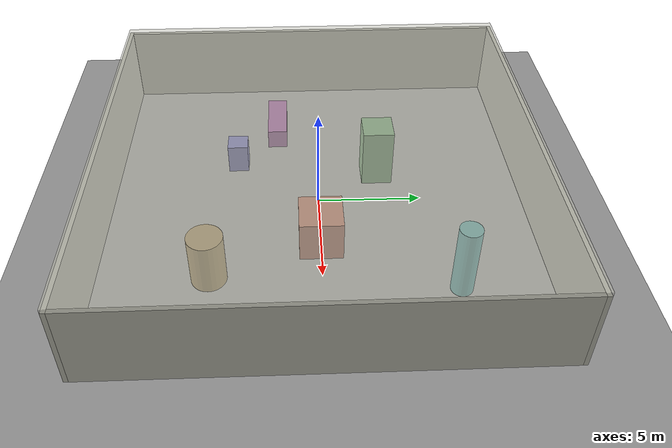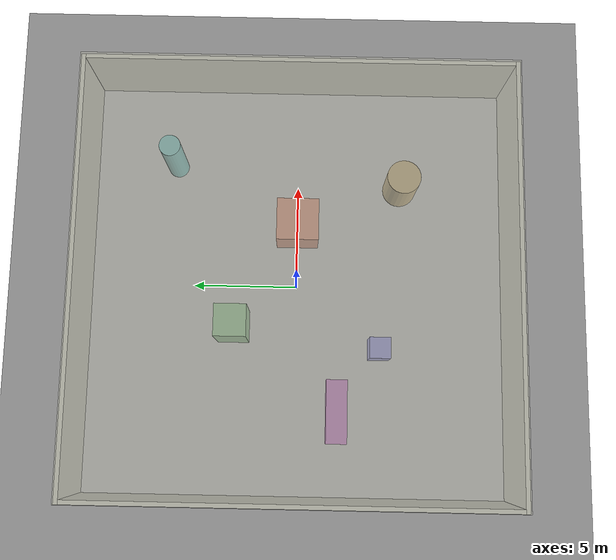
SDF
<?xml version="1.0"?>
<sdf version="1.9">
  <world name="warehouse">

    <!-- Physics -->
    <physics name="1ms" type="ode">
      <max_step_size>0.004</max_step_size>
      <real_time_factor>1.0</real_time_factor>
      <real_time_update_rate>250</real_time_update_rate>
    </physics>

    <!-- PX4 Required: Gravity and magnetic field for IMU/mag sensors -->
    <gravity>0 0 -9.8</gravity>
    <magnetic_field>6e-06 2.3e-05 -4.2e-05</magnetic_field>
    <atmosphere type="adiabatic"/>

    <!-- Scene configuration -->
    <scene>
      <ambient>0.4 0.4 0.4 1</ambient>
      <grid>false</grid>
      <shadows>true</shadows>
    </scene>

    <!-- Required plugins -->
    <plugin filename="gz-sim-physics-system" name="gz::sim::systems::Physics" />
    <plugin filename="gz-sim-scene-broadcaster-system" name="gz::sim::systems::SceneBroadcaster" />
    <plugin filename="gz-sim-sensors-system" name="gz::sim::systems::Sensors">
      <render_engine>ogre2</render_engine>
    </plugin>
    <plugin filename="gz-sim-user-commands-system" name="gz::sim::systems::UserCommands" />

    <!-- Lighting -->
    <light type="directional" name="sun">
      <cast_shadows>true</cast_shadows>
      <pose>0 0 10 0 0 0</pose>
      <diffuse>0.8 0.8 0.8 1</diffuse>
      <specular>0.2 0.2 0.2 1</specular>
      <direction>-0.5 0.1 -0.9</direction>
    </light>

    <!-- Ground plane -->
    <model name="ground_plane">
      <static>true</static>
      <link name="link">
        <collision name="collision">
          <geometry>
            <plane>
              <normal>0 0 1</normal>
              <size>20 20</size>
            </plane>
          </geometry>
        </collision>
        <visual name="visual">
          <geometry>
            <plane>
              <normal>0 0 1</normal>
              <size>20 20</size>
            </plane>
          </geometry>
          <material>
            <ambient>0.5 0.5 0.5 1</ambient>
            <diffuse>0.6 0.6 0.6 1</diffuse>
          </material>
        </visual>
      </link>
    </model>

    <!-- Walls (20x20m room, 4m high, 0.2m thick) -->
    <!-- North wall -->
    <model name="wall_north">
      <static>true</static>
      <pose>0 10.1 2 0 0 0</pose>
      <link name="link">
        <collision name="collision">
          <geometry>
            <box>
              <size>20.4 0.2 4</size>
            </box>
          </geometry>
        </collision>
        <visual name="visual">
          <geometry>
            <box>
              <size>20.4 0.2 4</size>
            </box>
          </geometry>
          <material>
            <ambient>0.7 0.7 0.65 1</ambient>
          </material>
        </visual>
      </link>
    </model>

    <!-- South wall -->
    <model name="wall_south">
      <static>true</static>
      <pose>0 -10.1 2 0 0 0</pose>
      <link name="link">
        <collision name="collision">
          <geometry>
            <box>
              <size>20.4 0.2 4</size>
            </box>
          </geometry>
        </collision>
        <visual name="visual">
          <geometry>
            <box>
              <size>20.4 0.2 4</size>
            </box>
          </geometry>
          <material>
            <ambient>0.7 0.7 0.65 1</ambient>
          </material>
        </visual>
      </link>
    </model>

    <!-- East wall -->
    <model name="wall_east">
      <static>true</static>
      <pose>10.1 0 2 0 0 0</pose>
      <link name="link">
        <collision name="collision">
          <geometry>
            <box>
              <size>0.2 20 4</size>
            </box>
          </geometry>
        </collision>
        <visual name="visual">
          <geometry>
            <box>
              <size>0.2 20 4</size>
            </box>
          </geometry>
          <material>
            <ambient>0.7 0.7 0.65 1</ambient>
          </material>
        </visual>
      </link>
    </model>

    <!-- West wall -->
    <model name="wall_west">
      <static>true</static>
      <pose>-10.1 0 2 0 0 0</pose>
      <link name="link">
        <collision name="collision">
          <geometry>
            <box>
              <size>0.2 20 4</size>
            </box>
          </geometry>
        </collision>
        <visual name="visual">
          <geometry>
            <box>
              <size>0.2 20 4</size>
            </box>
          </geometry>
          <material>
            <ambient>0.7 0.7 0.65 1</ambient>
          </material>
        </visual>
      </link>
    </model>

    <!-- Ceiling -->
    <model name="ceiling">
      <static>true</static>
      <pose>0 0 4.1 0 0 0</pose>
      <link name="link">
        <collision name="collision">
          <geometry>
            <box>
              <size>20.4 20.4 0.2</size>
            </box>
          </geometry>
        </collision>
        <visual name="visual">
          <geometry>
            <box>
              <size>20.4 20.4 0.2</size>
            </box>
          </geometry>
          <material>
            <ambient>0.8 0.8 0.75 1</ambient>
          </material>
          <transparency>0.5</transparency>
        </visual>
      </link>
    </model>

    <!-- Obstacle 1: Large box (2x2x2m) at (3, 0) — matches mock_scene_node -->
    <model name="obstacle_box_1">
      <static>true</static>
      <pose>3 0 1 0 0 0</pose>
      <link name="link">
        <collision name="collision">
          <geometry>
            <box>
              <size>2 2 2</size>
            </box>
          </geometry>
        </collision>
        <visual name="visual">
          <geometry>
            <box>
              <size>2 2 2</size>
            </box>
          </geometry>
          <material>
            <ambient>0.6 0.3 0.2 1</ambient>
            <diffuse>0.7 0.4 0.3 1</diffuse>
          </material>
        </visual>
      </link>
    </model>

    <!-- Obstacle 2: Tall box (1.5x1.5x3m) at (-2, 3) — matches mock_scene_node -->
    <model name="obstacle_box_2">
      <static>true</static>
      <pose>-2 3 1.5 0 0 0</pose>
      <link name="link">
        <collision name="collision">
          <geometry>
            <box>
              <size>1.5 1.5 3</size>
            </box>
          </geometry>
        </collision>
        <visual name="visual">
          <geometry>
            <box>
              <size>1.5 1.5 3</size>
            </box>
          </geometry>
          <material>
            <ambient>0.3 0.5 0.3 1</ambient>
            <diffuse>0.4 0.6 0.4 1</diffuse>
          </material>
        </visual>
      </link>
    </model>

    <!-- Obstacle 3: Small box (1x1x1.5m) at (-3, -4) — matches mock_scene_node -->
    <model name="obstacle_box_3">
      <static>true</static>
      <pose>-3 -4 0.75 0 0 0</pose>
      <link name="link">
        <collision name="collision">
          <geometry>
            <box>
              <size>1 1 1.5</size>
            </box>
          </geometry>
        </collision>
        <visual name="visual">
          <geometry>
            <box>
              <size>1 1 1.5</size>
            </box>
          </geometry>
          <material>
            <ambient>0.3 0.3 0.6 1</ambient>
            <diffuse>0.4 0.4 0.7 1</diffuse>
          </material>
        </visual>
      </link>
    </model>

    <!-- Obstacle 4: Cylinder (r=0.8, h=2.5) at (5, -5) -->
    <model name="obstacle_cyl_1">
      <static>true</static>
      <pose>5 -5 1.25 0 0 0</pose>
      <link name="link">
        <collision name="collision">
          <geometry>
            <cylinder>
              <radius>0.8</radius>
              <length>2.5</length>
            </cylinder>
          </geometry>
        </collision>
        <visual name="visual">
          <geometry>
            <cylinder>
              <radius>0.8</radius>
              <length>2.5</length>
            </cylinder>
          </geometry>
          <material>
            <ambient>0.5 0.4 0.2 1</ambient>
            <diffuse>0.6 0.5 0.3 1</diffuse>
          </material>
        </visual>
      </link>
    </model>

    <!-- Obstacle 5: Wide low box (3x1x1m) at (-6, -2) -->
    <model name="obstacle_box_4">
      <static>true</static>
      <pose>-6 -2 0.5 0 0 0</pose>
      <link name="link">
        <collision name="collision">
          <geometry>
            <box>
              <size>3 1 1</size>
            </box>
          </geometry>
        </collision>
        <visual name="visual">
          <geometry>
            <box>
              <size>3 1 1</size>
            </box>
          </geometry>
          <material>
            <ambient>0.5 0.2 0.5 1</ambient>
            <diffuse>0.6 0.3 0.6 1</diffuse>
          </material>
        </visual>
      </link>
    </model>

    <!-- Obstacle 6: Cylinder (r=0.5, h=3.5) at (6, 6) -->
    <model name="obstacle_cyl_2">
      <static>true</static>
      <pose>6 6 1.75 0 0 0</pose>
      <link name="link">
        <collision name="collision">
          <geometry>
            <cylinder>
              <radius>0.5</radius>
              <length>3.5</length>
            </cylinder>
          </geometry>
        </collision>
        <visual name="visual">
          <geometry>
            <cylinder>
              <radius>0.5</radius>
              <length>3.5</length>
            </cylinder>
          </geometry>
          <material>
            <ambient>0.2 0.5 0.5 1</ambient>
            <diffuse>0.3 0.6 0.6 1</diffuse>
          </material>
        </visual>
      </link>
    </model>

  </world>
</sdf>
